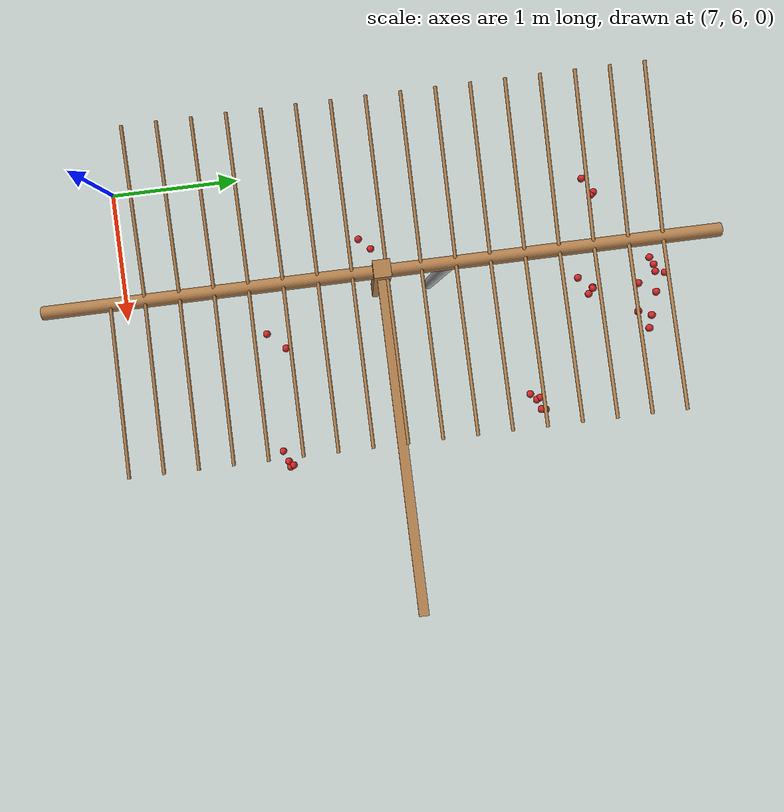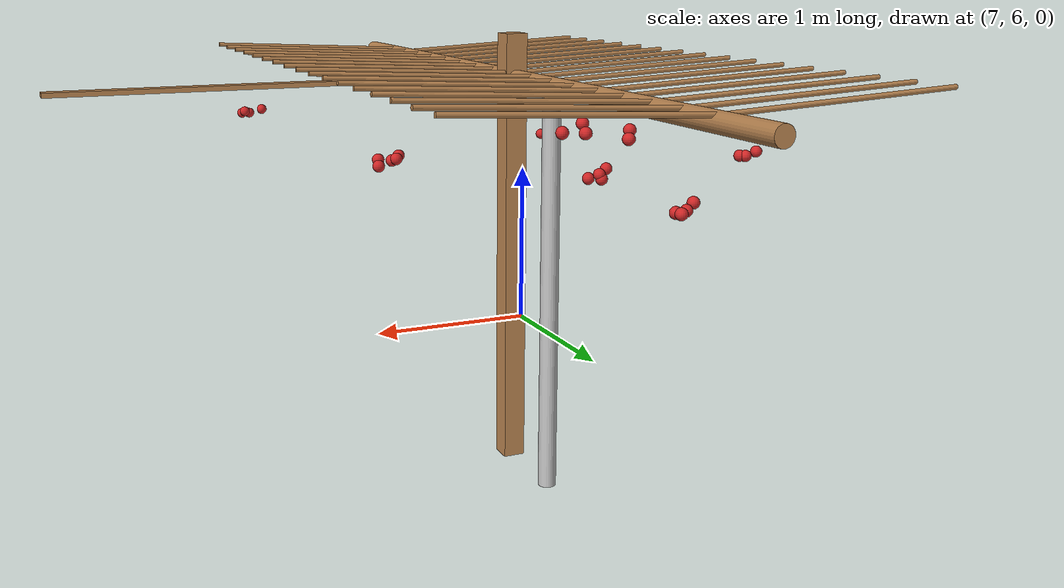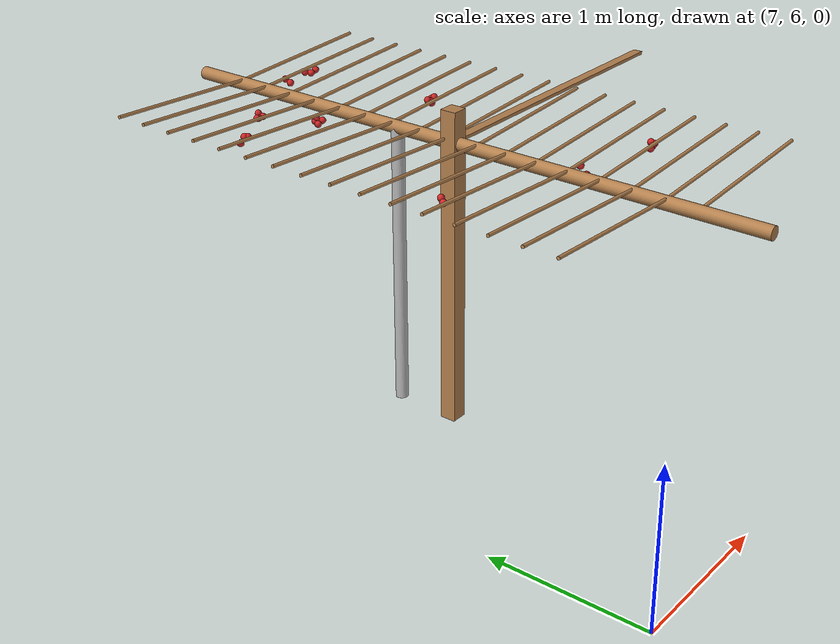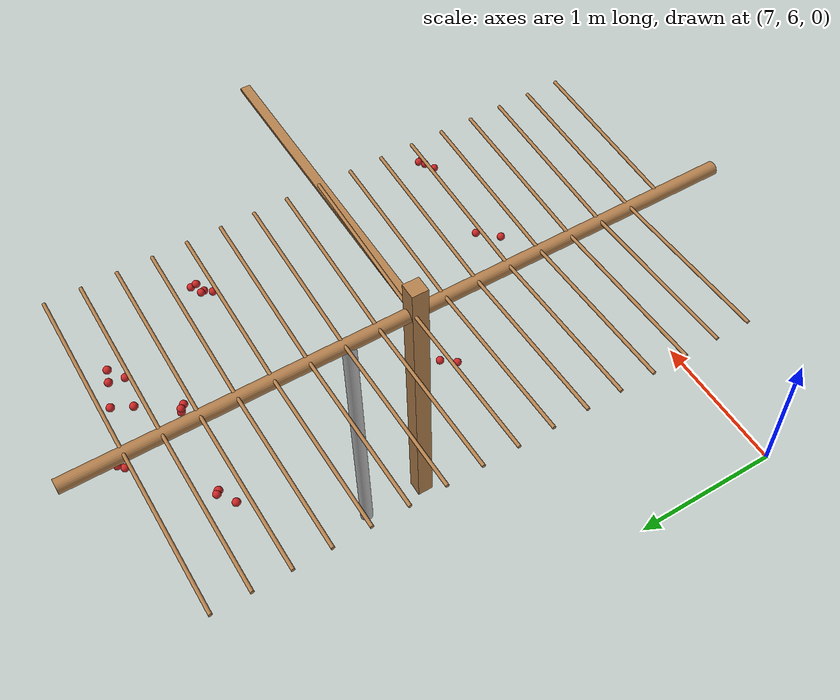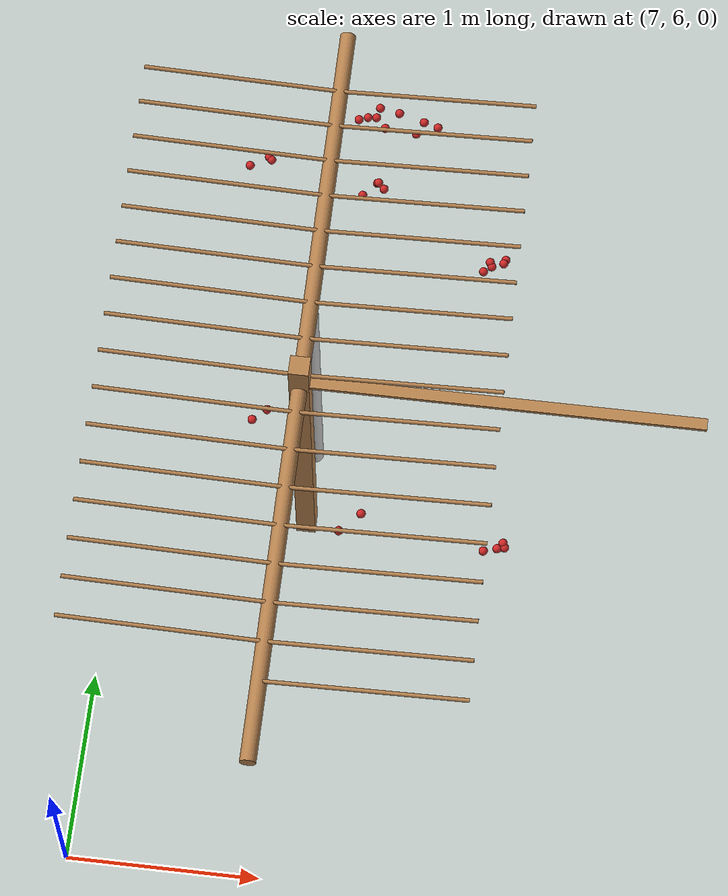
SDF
<sdf version="1.4">
 <model name="pergola">
  <include><name>post_48</name><pose>8.0 8.0 0 0 0 0</pose><uri>model://post</uri></include>
  <link name="beam_48">
   <pose>9.0 8.0 1.81 0 0 0</pose>
   <collision name="collision"><geometry><box><size>2.0 0.06 0.02</size></box></geometry></collision>
   <visual name="visual">
    <geometry><box><size>2.0 0.06 0.02</size></box></geometry>
    <material><script><name>Gazebo/Wood</name></script></material>
   </visual>
   <inertial>
    <mass>5</mass>
    <inertia>
     <ixx>0.0016666666666666668</ixx>
     <ixy>0.0</ixy>
     <ixz>0.0</ixz>
     <iyy>1.6681666666666664</iyy>
     <iyz>0.0</iyz>
     <izz>1.6668333333333332</izz>
    </inertia>
   </inertial>
  </link>
  <include><name>tree_44</name><pose>8.0 8.4 0 0 0 0</pose><uri>model://tree_trunk</uri></include>
  <link name="baseBranch_43">
   <pose>8.0 7.0 1.8 1.5707963267948966 0 0</pose>
   <collision name="collision">
    <geometry><cylinder><radius>0.04</radius><length>1.94</length></cylinder></geometry>
   </collision>
   <visual name="visual">
    <geometry><cylinder><radius>0.04</radius><length>1.94</length></cylinder></geometry>
    <material><script><name>Gazebo/WoodFloor</name></script></material>
   </visual>
   <inertial>
    <mass>10</mass>
    <inertia>
     <ixx>3.140333333333333</ixx>
     <ixy>0.0</ixy>
     <ixz>0.0</ixz>
     <iyy>3.140333333333333</iyy>
     <iyz>0.0</iyz>
     <izz>0.008</izz>
    </inertia>
   </inertial>
  </link>
  <link name="baseBranch_44">
   <pose>8.0 9.0 1.8 1.5707963267948966 0 0</pose>
   <collision name="collision">
    <geometry><cylinder><radius>0.04</radius><length>1.94</length></cylinder></geometry>
   </collision>
   <visual name="visual">
    <geometry><cylinder><radius>0.04</radius><length>1.94</length></cylinder></geometry>
    <material><script><name>Gazebo/WoodFloor</name></script></material>
   </visual>
   <inertial>
    <mass>10</mass>
    <inertia>
     <ixx>3.140333333333333</ixx>
     <ixy>0.0</ixy>
     <ixz>0.0</ixz>
     <iyy>3.140333333333333</iyy>
     <iyz>0.0</iyz>
     <izz>0.008</izz>
    </inertia>
   </inertial>
  </link>
  <link name="vine_667">
   <pose>7.5 6.630000000000001 1.85 0 -1.5208379310729538 0</pose>
   <collision name="collision">
    <geometry><cylinder><radius>0.01</radius><length>1.0012492197250393</length></cylinder></geometry>
   </collision>
   <visual name="visual">
    <geometry><cylinder><radius>0.01</radius><length>1.0012492197250393</length></cylinder></geometry>
    <material><script><name>Gazebo/WoodFloor</name></script></material>
   </visual>
   <inertial>
    <mass>5</mass>
    <inertia>
     <ixx>0.41783333333333345</ixx>
     <ixy>0.0</ixy>
     <ixz>0.0</ixz>
     <iyy>0.41783333333333345</iyy>
     <iyz>0.0</iyz>
     <izz>0.00025</izz>
    </inertia>
   </inertial>
  </link>
  <link name="vine_669">
   <pose>7.5 6.830000000000001 1.85 0 -1.5208379310729538 0</pose>
   <collision name="collision">
    <geometry><cylinder><radius>0.01</radius><length>1.0012492197250393</length></cylinder></geometry>
   </collision>
   <visual name="visual">
    <geometry><cylinder><radius>0.01</radius><length>1.0012492197250393</length></cylinder></geometry>
    <material><script><name>Gazebo/WoodFloor</name></script></material>
   </visual>
   <inertial>
    <mass>5</mass>
    <inertia>
     <ixx>0.41783333333333345</ixx>
     <ixy>0.0</ixy>
     <ixz>0.0</ixz>
     <iyy>0.41783333333333345</iyy>
     <iyz>0.0</iyz>
     <izz>0.00025</izz>
    </inertia>
   </inertial>
  </link>
  <link name="vine_671">
   <pose>7.5 7.03 1.85 0 -1.5208379310729538 0</pose>
   <collision name="collision">
    <geometry><cylinder><radius>0.01</radius><length>1.0012492197250393</length></cylinder></geometry>
   </collision>
   <visual name="visual">
    <geometry><cylinder><radius>0.01</radius><length>1.0012492197250393</length></cylinder></geometry>
    <material><script><name>Gazebo/WoodFloor</name></script></material>
   </visual>
   <inertial>
    <mass>5</mass>
    <inertia>
     <ixx>0.41783333333333345</ixx>
     <ixy>0.0</ixy>
     <ixz>0.0</ixz>
     <iyy>0.41783333333333345</iyy>
     <iyz>0.0</iyz>
     <izz>0.00025</izz>
    </inertia>
   </inertial>
  </link>
  <link name="vine_673">
   <pose>7.5 7.23 1.85 0 -1.5208379310729538 0</pose>
   <collision name="collision">
    <geometry><cylinder><radius>0.01</radius><length>1.0012492197250393</length></cylinder></geometry>
   </collision>
   <visual name="visual">
    <geometry><cylinder><radius>0.01</radius><length>1.0012492197250393</length></cylinder></geometry>
    <material><script><name>Gazebo/WoodFloor</name></script></material>
   </visual>
   <inertial>
    <mass>5</mass>
    <inertia>
     <ixx>0.41783333333333345</ixx>
     <ixy>0.0</ixy>
     <ixz>0.0</ixz>
     <iyy>0.41783333333333345</iyy>
     <iyz>0.0</iyz>
     <izz>0.00025</izz>
    </inertia>
   </inertial>
  </link>
  <link name="vine_675">
   <pose>7.5 7.430000000000001 1.85 0 -1.5208379310729538 0</pose>
   <collision name="collision">
    <geometry><cylinder><radius>0.01</radius><length>1.0012492197250393</length></cylinder></geometry>
   </collision>
   <visual name="visual">
    <geometry><cylinder><radius>0.01</radius><length>1.0012492197250393</length></cylinder></geometry>
    <material><script><name>Gazebo/WoodFloor</name></script></material>
   </visual>
   <inertial>
    <mass>5</mass>
    <inertia>
     <ixx>0.41783333333333345</ixx>
     <ixy>0.0</ixy>
     <ixz>0.0</ixz>
     <iyy>0.41783333333333345</iyy>
     <iyz>0.0</iyz>
     <izz>0.00025</izz>
    </inertia>
   </inertial>
  </link>
  <link name="vine_677">
   <pose>7.5 7.630000000000001 1.85 0 -1.5208379310729538 0</pose>
   <collision name="collision">
    <geometry><cylinder><radius>0.01</radius><length>1.0012492197250393</length></cylinder></geometry>
   </collision>
   <visual name="visual">
    <geometry><cylinder><radius>0.01</radius><length>1.0012492197250393</length></cylinder></geometry>
    <material><script><name>Gazebo/WoodFloor</name></script></material>
   </visual>
   <inertial>
    <mass>5</mass>
    <inertia>
     <ixx>0.41783333333333345</ixx>
     <ixy>0.0</ixy>
     <ixz>0.0</ixz>
     <iyy>0.41783333333333345</iyy>
     <iyz>0.0</iyz>
     <izz>0.00025</izz>
    </inertia>
   </inertial>
  </link>
  <link name="vine_679">
   <pose>7.5 7.830000000000001 1.85 0 -1.5208379310729538 0</pose>
   <collision name="collision">
    <geometry><cylinder><radius>0.01</radius><length>1.0012492197250393</length></cylinder></geometry>
   </collision>
   <visual name="visual">
    <geometry><cylinder><radius>0.01</radius><length>1.0012492197250393</length></cylinder></geometry>
    <material><script><name>Gazebo/WoodFloor</name></script></material>
   </visual>
   <inertial>
    <mass>5</mass>
    <inertia>
     <ixx>0.41783333333333345</ixx>
     <ixy>0.0</ixy>
     <ixz>0.0</ixz>
     <iyy>0.41783333333333345</iyy>
     <iyz>0.0</iyz>
     <izz>0.00025</izz>
    </inertia>
   </inertial>
  </link>
  <link name="vine_681">
   <pose>7.5 8.03 1.85 0 -1.5208379310729538 0</pose>
   <collision name="collision">
    <geometry><cylinder><radius>0.01</radius><length>1.0012492197250393</length></cylinder></geometry>
   </collision>
   <visual name="visual">
    <geometry><cylinder><radius>0.01</radius><length>1.0012492197250393</length></cylinder></geometry>
    <material><script><name>Gazebo/WoodFloor</name></script></material>
   </visual>
   <inertial>
    <mass>5</mass>
    <inertia>
     <ixx>0.41783333333333345</ixx>
     <ixy>0.0</ixy>
     <ixz>0.0</ixz>
     <iyy>0.41783333333333345</iyy>
     <iyz>0.0</iyz>
     <izz>0.00025</izz>
    </inertia>
   </inertial>
  </link>
  <link name="vine_683">
   <pose>7.5 8.23 1.85 0 -1.5208379310729538 0</pose>
   <collision name="collision">
    <geometry><cylinder><radius>0.01</radius><length>1.0012492197250393</length></cylinder></geometry>
   </collision>
   <visual name="visual">
    <geometry><cylinder><radius>0.01</radius><length>1.0012492197250393</length></cylinder></geometry>
    <material><script><name>Gazebo/WoodFloor</name></script></material>
   </visual>
   <inertial>
    <mass>5</mass>
    <inertia>
     <ixx>0.41783333333333345</ixx>
     <ixy>0.0</ixy>
     <ixz>0.0</ixz>
     <iyy>0.41783333333333345</iyy>
     <iyz>0.0</iyz>
     <izz>0.00025</izz>
    </inertia>
   </inertial>
  </link>
  <link name="vine_685">
   <pose>7.5 8.43 1.85 0 -1.5208379310729538 0</pose>
   <collision name="collision">
    <geometry><cylinder><radius>0.01</radius><length>1.0012492197250393</length></cylinder></geometry>
   </collision>
   <visual name="visual">
    <geometry><cylinder><radius>0.01</radius><length>1.0012492197250393</length></cylinder></geometry>
    <material><script><name>Gazebo/WoodFloor</name></script></material>
   </visual>
   <inertial>
    <mass>5</mass>
    <inertia>
     <ixx>0.41783333333333345</ixx>
     <ixy>0.0</ixy>
     <ixz>0.0</ixz>
     <iyy>0.41783333333333345</iyy>
     <iyz>0.0</iyz>
     <izz>0.00025</izz>
    </inertia>
   </inertial>
  </link>
  <link name="vine_687">
   <pose>7.5 8.629999999999999 1.85 0 -1.5208379310729538 0</pose>
   <collision name="collision">
    <geometry><cylinder><radius>0.01</radius><length>1.0012492197250393</length></cylinder></geometry>
   </collision>
   <visual name="visual">
    <geometry><cylinder><radius>0.01</radius><length>1.0012492197250393</length></cylinder></geometry>
    <material><script><name>Gazebo/WoodFloor</name></script></material>
   </visual>
   <inertial>
    <mass>5</mass>
    <inertia>
     <ixx>0.41783333333333345</ixx>
     <ixy>0.0</ixy>
     <ixz>0.0</ixz>
     <iyy>0.41783333333333345</iyy>
     <iyz>0.0</iyz>
     <izz>0.00025</izz>
    </inertia>
   </inertial>
  </link>
  <link name="vine_689">
   <pose>7.5 8.83 1.85 0 -1.5208379310729538 0</pose>
   <collision name="collision">
    <geometry><cylinder><radius>0.01</radius><length>1.0012492197250393</length></cylinder></geometry>
   </collision>
   <visual name="visual">
    <geometry><cylinder><radius>0.01</radius><length>1.0012492197250393</length></cylinder></geometry>
    <material><script><name>Gazebo/WoodFloor</name></script></material>
   </visual>
   <inertial>
    <mass>5</mass>
    <inertia>
     <ixx>0.41783333333333345</ixx>
     <ixy>0.0</ixy>
     <ixz>0.0</ixz>
     <iyy>0.41783333333333345</iyy>
     <iyz>0.0</iyz>
     <izz>0.00025</izz>
    </inertia>
   </inertial>
  </link>
  <link name="vine_691">
   <pose>7.5 9.03 1.85 0 -1.5208379310729538 0</pose>
   <collision name="collision">
    <geometry><cylinder><radius>0.01</radius><length>1.0012492197250393</length></cylinder></geometry>
   </collision>
   <visual name="visual">
    <geometry><cylinder><radius>0.01</radius><length>1.0012492197250393</length></cylinder></geometry>
    <material><script><name>Gazebo/WoodFloor</name></script></material>
   </visual>
   <inertial>
    <mass>5</mass>
    <inertia>
     <ixx>0.41783333333333345</ixx>
     <ixy>0.0</ixy>
     <ixz>0.0</ixz>
     <iyy>0.41783333333333345</iyy>
     <iyz>0.0</iyz>
     <izz>0.00025</izz>
    </inertia>
   </inertial>
  </link>
  <link name="vine_693">
   <pose>7.5 9.23 1.85 0 -1.5208379310729538 0</pose>
   <collision name="collision">
    <geometry><cylinder><radius>0.01</radius><length>1.0012492197250393</length></cylinder></geometry>
   </collision>
   <visual name="visual">
    <geometry><cylinder><radius>0.01</radius><length>1.0012492197250393</length></cylinder></geometry>
    <material><script><name>Gazebo/WoodFloor</name></script></material>
   </visual>
   <inertial>
    <mass>5</mass>
    <inertia>
     <ixx>0.41783333333333345</ixx>
     <ixy>0.0</ixy>
     <ixz>0.0</ixz>
     <iyy>0.41783333333333345</iyy>
     <iyz>0.0</iyz>
     <izz>0.00025</izz>
    </inertia>
   </inertial>
  </link>
  <link name="vine_695">
   <pose>7.5 9.43 1.85 0 -1.5208379310729538 0</pose>
   <collision name="collision">
    <geometry><cylinder><radius>0.01</radius><length>1.0012492197250393</length></cylinder></geometry>
   </collision>
   <visual name="visual">
    <geometry><cylinder><radius>0.01</radius><length>1.0012492197250393</length></cylinder></geometry>
    <material><script><name>Gazebo/WoodFloor</name></script></material>
   </visual>
   <inertial>
    <mass>5</mass>
    <inertia>
     <ixx>0.41783333333333345</ixx>
     <ixy>0.0</ixy>
     <ixz>0.0</ixz>
     <iyy>0.41783333333333345</iyy>
     <iyz>0.0</iyz>
     <izz>0.00025</izz>
    </inertia>
   </inertial>
  </link>
  <link name="vine_697">
   <pose>7.5 9.63 1.85 0 -1.5208379310729538 0</pose>
   <collision name="collision">
    <geometry><cylinder><radius>0.01</radius><length>1.0012492197250393</length></cylinder></geometry>
   </collision>
   <visual name="visual">
    <geometry><cylinder><radius>0.01</radius><length>1.0012492197250393</length></cylinder></geometry>
    <material><script><name>Gazebo/WoodFloor</name></script></material>
   </visual>
   <inertial>
    <mass>5</mass>
    <inertia>
     <ixx>0.41783333333333345</ixx>
     <ixy>0.0</ixy>
     <ixz>0.0</ixz>
     <iyy>0.41783333333333345</iyy>
     <iyz>0.0</iyz>
     <izz>0.00025</izz>
    </inertia>
   </inertial>
  </link>
  <link name="vine_864">
   <pose>8.5 6.430000000000001 1.85 0 1.5208379310729538 0</pose>
   <collision name="collision">
    <geometry><cylinder><radius>0.01</radius><length>1.0012492197250393</length></cylinder></geometry>
   </collision>
   <visual name="visual">
    <geometry><cylinder><radius>0.01</radius><length>1.0012492197250393</length></cylinder></geometry>
    <material><script><name>Gazebo/WoodFloor</name></script></material>
   </visual>
   <inertial>
    <mass>5</mass>
    <inertia>
     <ixx>0.41783333333333345</ixx>
     <ixy>0.0</ixy>
     <ixz>0.0</ixz>
     <iyy>0.41783333333333345</iyy>
     <iyz>0.0</iyz>
     <izz>0.00025</izz>
    </inertia>
   </inertial>
  </link>
  <link name="vine_866">
   <pose>8.5 6.630000000000001 1.85 0 1.5208379310729538 0</pose>
   <collision name="collision">
    <geometry><cylinder><radius>0.01</radius><length>1.0012492197250393</length></cylinder></geometry>
   </collision>
   <visual name="visual">
    <geometry><cylinder><radius>0.01</radius><length>1.0012492197250393</length></cylinder></geometry>
    <material><script><name>Gazebo/WoodFloor</name></script></material>
   </visual>
   <inertial>
    <mass>5</mass>
    <inertia>
     <ixx>0.41783333333333345</ixx>
     <ixy>0.0</ixy>
     <ixz>0.0</ixz>
     <iyy>0.41783333333333345</iyy>
     <iyz>0.0</iyz>
     <izz>0.00025</izz>
    </inertia>
   </inertial>
  </link>
  <link name="vine_868">
   <pose>8.5 6.830000000000001 1.85 0 1.5208379310729538 0</pose>
   <collision name="collision">
    <geometry><cylinder><radius>0.01</radius><length>1.0012492197250393</length></cylinder></geometry>
   </collision>
   <visual name="visual">
    <geometry><cylinder><radius>0.01</radius><length>1.0012492197250393</length></cylinder></geometry>
    <material><script><name>Gazebo/WoodFloor</name></script></material>
   </visual>
   <inertial>
    <mass>5</mass>
    <inertia>
     <ixx>0.41783333333333345</ixx>
     <ixy>0.0</ixy>
     <ixz>0.0</ixz>
     <iyy>0.41783333333333345</iyy>
     <iyz>0.0</iyz>
     <izz>0.00025</izz>
    </inertia>
   </inertial>
  </link>
  <link name="vine_870">
   <pose>8.5 7.03 1.85 0 1.5208379310729538 0</pose>
   <collision name="collision">
    <geometry><cylinder><radius>0.01</radius><length>1.0012492197250393</length></cylinder></geometry>
   </collision>
   <visual name="visual">
    <geometry><cylinder><radius>0.01</radius><length>1.0012492197250393</length></cylinder></geometry>
    <material><script><name>Gazebo/WoodFloor</name></script></material>
   </visual>
   <inertial>
    <mass>5</mass>
    <inertia>
     <ixx>0.41783333333333345</ixx>
     <ixy>0.0</ixy>
     <ixz>0.0</ixz>
     <iyy>0.41783333333333345</iyy>
     <iyz>0.0</iyz>
     <izz>0.00025</izz>
    </inertia>
   </inertial>
  </link>
  <link name="vine_872">
   <pose>8.5 7.23 1.85 0 1.5208379310729538 0</pose>
   <collision name="collision">
    <geometry><cylinder><radius>0.01</radius><length>1.0012492197250393</length></cylinder></geometry>
   </collision>
   <visual name="visual">
    <geometry><cylinder><radius>0.01</radius><length>1.0012492197250393</length></cylinder></geometry>
    <material><script><name>Gazebo/WoodFloor</name></script></material>
   </visual>
   <inertial>
    <mass>5</mass>
    <inertia>
     <ixx>0.41783333333333345</ixx>
     <ixy>0.0</ixy>
     <ixz>0.0</ixz>
     <iyy>0.41783333333333345</iyy>
     <iyz>0.0</iyz>
     <izz>0.00025</izz>
    </inertia>
   </inertial>
  </link>
  <link name="vine_874">
   <pose>8.5 7.430000000000001 1.85 0 1.5208379310729538 0</pose>
   <collision name="collision">
    <geometry><cylinder><radius>0.01</radius><length>1.0012492197250393</length></cylinder></geometry>
   </collision>
   <visual name="visual">
    <geometry><cylinder><radius>0.01</radius><length>1.0012492197250393</length></cylinder></geometry>
    <material><script><name>Gazebo/WoodFloor</name></script></material>
   </visual>
   <inertial>
    <mass>5</mass>
    <inertia>
     <ixx>0.41783333333333345</ixx>
     <ixy>0.0</ixy>
     <ixz>0.0</ixz>
     <iyy>0.41783333333333345</iyy>
     <iyz>0.0</iyz>
     <izz>0.00025</izz>
    </inertia>
   </inertial>
  </link>
  <link name="vine_876">
   <pose>8.5 7.630000000000001 1.85 0 1.5208379310729538 0</pose>
   <collision name="collision">
    <geometry><cylinder><radius>0.01</radius><length>1.0012492197250393</length></cylinder></geometry>
   </collision>
   <visual name="visual">
    <geometry><cylinder><radius>0.01</radius><length>1.0012492197250393</length></cylinder></geometry>
    <material><script><name>Gazebo/WoodFloor</name></script></material>
   </visual>
   <inertial>
    <mass>5</mass>
    <inertia>
     <ixx>0.41783333333333345</ixx>
     <ixy>0.0</ixy>
     <ixz>0.0</ixz>
     <iyy>0.41783333333333345</iyy>
     <iyz>0.0</iyz>
     <izz>0.00025</izz>
    </inertia>
   </inertial>
  </link>
  <link name="vine_878">
   <pose>8.5 7.830000000000001 1.85 0 1.5208379310729538 0</pose>
   <collision name="collision">
    <geometry><cylinder><radius>0.01</radius><length>1.0012492197250393</length></cylinder></geometry>
   </collision>
   <visual name="visual">
    <geometry><cylinder><radius>0.01</radius><length>1.0012492197250393</length></cylinder></geometry>
    <material><script><name>Gazebo/WoodFloor</name></script></material>
   </visual>
   <inertial>
    <mass>5</mass>
    <inertia>
     <ixx>0.41783333333333345</ixx>
     <ixy>0.0</ixy>
     <ixz>0.0</ixz>
     <iyy>0.41783333333333345</iyy>
     <iyz>0.0</iyz>
     <izz>0.00025</izz>
    </inertia>
   </inertial>
  </link>
  <link name="vine_880">
   <pose>8.5 8.03 1.85 0 1.5208379310729538 0</pose>
   <collision name="collision">
    <geometry><cylinder><radius>0.01</radius><length>1.0012492197250393</length></cylinder></geometry>
   </collision>
   <visual name="visual">
    <geometry><cylinder><radius>0.01</radius><length>1.0012492197250393</length></cylinder></geometry>
    <material><script><name>Gazebo/WoodFloor</name></script></material>
   </visual>
   <inertial>
    <mass>5</mass>
    <inertia>
     <ixx>0.41783333333333345</ixx>
     <ixy>0.0</ixy>
     <ixz>0.0</ixz>
     <iyy>0.41783333333333345</iyy>
     <iyz>0.0</iyz>
     <izz>0.00025</izz>
    </inertia>
   </inertial>
  </link>
  <link name="vine_882">
   <pose>8.5 8.23 1.85 0 1.5208379310729538 0</pose>
   <collision name="collision">
    <geometry><cylinder><radius>0.01</radius><length>1.0012492197250393</length></cylinder></geometry>
   </collision>
   <visual name="visual">
    <geometry><cylinder><radius>0.01</radius><length>1.0012492197250393</length></cylinder></geometry>
    <material><script><name>Gazebo/WoodFloor</name></script></material>
   </visual>
   <inertial>
    <mass>5</mass>
    <inertia>
     <ixx>0.41783333333333345</ixx>
     <ixy>0.0</ixy>
     <ixz>0.0</ixz>
     <iyy>0.41783333333333345</iyy>
     <iyz>0.0</iyz>
     <izz>0.00025</izz>
    </inertia>
   </inertial>
  </link>
  <link name="vine_884">
   <pose>8.5 8.43 1.85 0 1.5208379310729538 0</pose>
   <collision name="collision">
    <geometry><cylinder><radius>0.01</radius><length>1.0012492197250393</length></cylinder></geometry>
   </collision>
   <visual name="visual">
    <geometry><cylinder><radius>0.01</radius><length>1.0012492197250393</length></cylinder></geometry>
    <material><script><name>Gazebo/WoodFloor</name></script></material>
   </visual>
   <inertial>
    <mass>5</mass>
    <inertia>
     <ixx>0.41783333333333345</ixx>
     <ixy>0.0</ixy>
     <ixz>0.0</ixz>
     <iyy>0.41783333333333345</iyy>
     <iyz>0.0</iyz>
     <izz>0.00025</izz>
    </inertia>
   </inertial>
  </link>
  <link name="vine_886">
   <pose>8.5 8.629999999999999 1.85 0 1.5208379310729538 0</pose>
   <collision name="collision">
    <geometry><cylinder><radius>0.01</radius><length>1.0012492197250393</length></cylinder></geometry>
   </collision>
   <visual name="visual">
    <geometry><cylinder><radius>0.01</radius><length>1.0012492197250393</length></cylinder></geometry>
    <material><script><name>Gazebo/WoodFloor</name></script></material>
   </visual>
   <inertial>
    <mass>5</mass>
    <inertia>
     <ixx>0.41783333333333345</ixx>
     <ixy>0.0</ixy>
     <ixz>0.0</ixz>
     <iyy>0.41783333333333345</iyy>
     <iyz>0.0</iyz>
     <izz>0.00025</izz>
    </inertia>
   </inertial>
  </link>
  <link name="vine_888">
   <pose>8.5 8.83 1.85 0 1.5208379310729538 0</pose>
   <collision name="collision">
    <geometry><cylinder><radius>0.01</radius><length>1.0012492197250393</length></cylinder></geometry>
   </collision>
   <visual name="visual">
    <geometry><cylinder><radius>0.01</radius><length>1.0012492197250393</length></cylinder></geometry>
    <material><script><name>Gazebo/WoodFloor</name></script></material>
   </visual>
   <inertial>
    <mass>5</mass>
    <inertia>
     <ixx>0.41783333333333345</ixx>
     <ixy>0.0</ixy>
     <ixz>0.0</ixz>
     <iyy>0.41783333333333345</iyy>
     <iyz>0.0</iyz>
     <izz>0.00025</izz>
    </inertia>
   </inertial>
  </link>
  <link name="vine_890">
   <pose>8.5 9.03 1.85 0 1.5208379310729538 0</pose>
   <collision name="collision">
    <geometry><cylinder><radius>0.01</radius><length>1.0012492197250393</length></cylinder></geometry>
   </collision>
   <visual name="visual">
    <geometry><cylinder><radius>0.01</radius><length>1.0012492197250393</length></cylinder></geometry>
    <material><script><name>Gazebo/WoodFloor</name></script></material>
   </visual>
   <inertial>
    <mass>5</mass>
    <inertia>
     <ixx>0.41783333333333345</ixx>
     <ixy>0.0</ixy>
     <ixz>0.0</ixz>
     <iyy>0.41783333333333345</iyy>
     <iyz>0.0</iyz>
     <izz>0.00025</izz>
    </inertia>
   </inertial>
  </link>
  <link name="vine_892">
   <pose>8.5 9.23 1.85 0 1.5208379310729538 0</pose>
   <collision name="collision">
    <geometry><cylinder><radius>0.01</radius><length>1.0012492197250393</length></cylinder></geometry>
   </collision>
   <visual name="visual">
    <geometry><cylinder><radius>0.01</radius><length>1.0012492197250393</length></cylinder></geometry>
    <material><script><name>Gazebo/WoodFloor</name></script></material>
   </visual>
   <inertial>
    <mass>5</mass>
    <inertia>
     <ixx>0.41783333333333345</ixx>
     <ixy>0.0</ixy>
     <ixz>0.0</ixz>
     <iyy>0.41783333333333345</iyy>
     <iyz>0.0</iyz>
     <izz>0.00025</izz>
    </inertia>
   </inertial>
  </link>
  <link name="vine_894">
   <pose>8.5 9.43 1.85 0 1.5208379310729538 0</pose>
   <collision name="collision">
    <geometry><cylinder><radius>0.01</radius><length>1.0012492197250393</length></cylinder></geometry>
   </collision>
   <visual name="visual">
    <geometry><cylinder><radius>0.01</radius><length>1.0012492197250393</length></cylinder></geometry>
    <material><script><name>Gazebo/WoodFloor</name></script></material>
   </visual>
   <inertial>
    <mass>5</mass>
    <inertia>
     <ixx>0.41783333333333345</ixx>
     <ixy>0.0</ixy>
     <ixz>0.0</ixz>
     <iyy>0.41783333333333345</iyy>
     <iyz>0.0</iyz>
     <izz>0.00025</izz>
    </inertia>
   </inertial>
  </link>
  <link name="vine_896">
   <pose>8.5 9.63 1.85 0 1.5208379310729538 0</pose>
   <collision name="collision">
    <geometry><cylinder><radius>0.01</radius><length>1.0012492197250393</length></cylinder></geometry>
   </collision>
   <visual name="visual">
    <geometry><cylinder><radius>0.01</radius><length>1.0012492197250393</length></cylinder></geometry>
    <material><script><name>Gazebo/WoodFloor</name></script></material>
   </visual>
   <inertial>
    <mass>5</mass>
    <inertia>
     <ixx>0.41783333333333345</ixx>
     <ixy>0.0</ixy>
     <ixz>0.0</ixz>
     <iyy>0.41783333333333345</iyy>
     <iyz>0.0</iyz>
     <izz>0.00025</izz>
    </inertia>
   </inertial>
  </link>
  <link name="fruit_18">
   <pose>7.581290114669968 9.261838918660123 1.6235108385465933 0 0 0</pose>
   <collision name="fruit_collision_18"><geometry><sphere><radius>0.022</radius></sphere></geometry></collision>
   <visual name="visual">
    <geometry><sphere><radius>0.022</radius></sphere></geometry>
    <material><script><name>Gazebo/Red</name></script></material>
   </visual>
   <inertial>
    <mass>0.05</mass>
    <inertia>
     <ixx>9.679999999999999e-06</ixx>
     <ixy>0.0</ixy>
     <ixz>0.0</ixz>
     <iyy>9.679999999999999e-06</iyy>
     <iyz>0.0</iyz>
     <izz>9.679999999999999e-06</izz>
    </inertia>
   </inertial>
   <sensor name="fruit_contact_18" type="contact">
    <contact><collision>fruit_collision_18</collision></contact>
   </sensor>
  </link>
  <link name="fruit_51">
   <pose>8.411350803293113 9.445516465501681 1.7958654879097147 0 0 0</pose>
   <collision name="fruit_collision_51"><geometry><sphere><radius>0.022</radius></sphere></geometry></collision>
   <visual name="visual">
    <geometry><sphere><radius>0.022</radius></sphere></geometry>
    <material><script><name>Gazebo/Red</name></script></material>
   </visual>
   <inertial>
    <mass>0.05</mass>
    <inertia>
     <ixx>9.679999999999999e-06</ixx>
     <ixy>0.0</ixy>
     <ixz>0.0</ixz>
     <iyy>9.679999999999999e-06</iyy>
     <iyz>0.0</iyz>
     <izz>9.679999999999999e-06</izz>
    </inertia>
   </inertial>
   <sensor name="fruit_contact_51" type="contact">
    <contact><collision>fruit_collision_51</collision></contact>
   </sensor>
  </link>
  <link name="fruit_101">
   <pose>8.168151486910277 9.177957673450075 1.5856301804149062 0 0 0</pose>
   <collision name="fruit_collision_101"><geometry><sphere><radius>0.022</radius></sphere></geometry></collision>
   <visual name="visual">
    <geometry><sphere><radius>0.022</radius></sphere></geometry>
    <material><script><name>Gazebo/Red</name></script></material>
   </visual>
   <inertial>
    <mass>0.05</mass>
    <inertia>
     <ixx>9.679999999999999e-06</ixx>
     <ixy>0.0</ixy>
     <ixz>0.0</ixz>
     <iyy>9.679999999999999e-06</iyy>
     <iyz>0.0</iyz>
     <izz>9.679999999999999e-06</izz>
    </inertia>
   </inertial>
   <sensor name="fruit_contact_101" type="contact">
    <contact><collision>fruit_collision_101</collision></contact>
   </sensor>
  </link>
  <link name="fruit_139">
   <pose>8.249212944509045 9.475040536429223 1.7685448182663113 0 0 0</pose>
   <collision name="fruit_collision_139"><geometry><sphere><radius>0.022</radius></sphere></geometry></collision>
   <visual name="visual">
    <geometry><sphere><radius>0.022</radius></sphere></geometry>
    <material><script><name>Gazebo/Red</name></script></material>
   </visual>
   <inertial>
    <mass>0.05</mass>
    <inertia>
     <ixx>9.679999999999999e-06</ixx>
     <ixy>0.0</ixy>
     <ixz>0.0</ixz>
     <iyy>9.679999999999999e-06</iyy>
     <iyz>0.0</iyz>
     <izz>9.679999999999999e-06</izz>
    </inertia>
   </inertial>
   <sensor name="fruit_contact_139" type="contact">
    <contact><collision>fruit_collision_139</collision></contact>
   </sensor>
  </link>
  <link name="fruit_152">
   <pose>8.981415558805331 7.29008322246547 1.626142924840516 0 0 0</pose>
   <collision name="fruit_collision_152"><geometry><sphere><radius>0.022</radius></sphere></geometry></collision>
   <visual name="visual">
    <geometry><sphere><radius>0.022</radius></sphere></geometry>
    <material><script><name>Gazebo/Red</name></script></material>
   </visual>
   <inertial>
    <mass>0.05</mass>
    <inertia>
     <ixx>9.679999999999999e-06</ixx>
     <ixy>0.0</ixy>
     <ixz>0.0</ixz>
     <iyy>9.679999999999999e-06</iyy>
     <iyz>0.0</iyz>
     <izz>9.679999999999999e-06</izz>
    </inertia>
   </inertial>
   <sensor name="fruit_contact_152" type="contact">
    <contact><collision>fruit_collision_152</collision></contact>
   </sensor>
  </link>
  <link name="fruit_216">
   <pose>8.095099080308772 9.635833956941221 1.5404094862231055 0 0 0</pose>
   <collision name="fruit_collision_216"><geometry><sphere><radius>0.022</radius></sphere></geometry></collision>
   <visual name="visual">
    <geometry><sphere><radius>0.022</radius></sphere></geometry>
    <material><script><name>Gazebo/Red</name></script></material>
   </visual>
   <inertial>
    <mass>0.05</mass>
    <inertia>
     <ixx>9.679999999999999e-06</ixx>
     <ixy>0.0</ixy>
     <ixz>0.0</ixz>
     <iyy>9.679999999999999e-06</iyy>
     <iyz>0.0</iyz>
     <izz>9.679999999999999e-06</izz>
    </inertia>
   </inertial>
   <sensor name="fruit_contact_216" type="contact">
    <contact><collision>fruit_collision_216</collision></contact>
   </sensor>
  </link>
  <link name="fruit_222">
   <pose>8.27556095794802 7.286599622357239 1.694509582716246 0 0 0</pose>
   <collision name="fruit_collision_222"><geometry><sphere><radius>0.022</radius></sphere></geometry></collision>
   <visual name="visual">
    <geometry><sphere><radius>0.022</radius></sphere></geometry>
    <material><script><name>Gazebo/Red</name></script></material>
   </visual>
   <inertial>
    <mass>0.05</mass>
    <inertia>
     <ixx>9.679999999999999e-06</ixx>
     <ixy>0.0</ixy>
     <ixz>0.0</ixz>
     <iyy>9.679999999999999e-06</iyy>
     <iyz>0.0</iyz>
     <izz>9.679999999999999e-06</izz>
    </inertia>
   </inertial>
   <sensor name="fruit_contact_222" type="contact">
    <contact><collision>fruit_collision_222</collision></contact>
   </sensor>
  </link>
  <link name="fruit_249">
   <pose>7.768204666161004 7.89018902395995 1.5426762324422463 0 0 0</pose>
   <collision name="fruit_collision_249"><geometry><sphere><radius>0.022</radius></sphere></geometry></collision>
   <visual name="visual">
    <geometry><sphere><radius>0.022</radius></sphere></geometry>
    <material><script><name>Gazebo/Red</name></script></material>
   </visual>
   <inertial>
    <mass>0.05</mass>
    <inertia>
     <ixx>9.679999999999999e-06</ixx>
     <ixy>0.0</ixy>
     <ixz>0.0</ixz>
     <iyy>9.679999999999999e-06</iyy>
     <iyz>0.0</iyz>
     <izz>9.679999999999999e-06</izz>
    </inertia>
   </inertial>
   <sensor name="fruit_contact_249" type="contact">
    <contact><collision>fruit_collision_249</collision></contact>
   </sensor>
  </link>
  <link name="fruit_334">
   <pose>8.82520710713632 8.79960544145075 1.61878344926521 0 0 0</pose>
   <collision name="fruit_collision_334"><geometry><sphere><radius>0.022</radius></sphere></geometry></collision>
   <visual name="visual">
    <geometry><sphere><radius>0.022</radius></sphere></geometry>
    <material><script><name>Gazebo/Red</name></script></material>
   </visual>
   <inertial>
    <mass>0.05</mass>
    <inertia>
     <ixx>9.679999999999999e-06</ixx>
     <ixy>0.0</ixy>
     <ixz>0.0</ixz>
     <iyy>9.679999999999999e-06</iyy>
     <iyz>0.0</iyz>
     <izz>9.679999999999999e-06</izz>
    </inertia>
   </inertial>
   <sensor name="fruit_contact_334" type="contact">
    <contact><collision>fruit_collision_334</collision></contact>
   </sensor>
  </link>
  <link name="fruit_400">
   <pose>9.081810019614768 7.322196341259673 1.6170603383517028 0 0 0</pose>
   <collision name="fruit_collision_400"><geometry><sphere><radius>0.022</radius></sphere></geometry></collision>
   <visual name="visual">
    <geometry><sphere><radius>0.022</radius></sphere></geometry>
    <material><script><name>Gazebo/Red</name></script></material>
   </visual>
   <inertial>
    <mass>0.05</mass>
    <inertia>
     <ixx>9.679999999999999e-06</ixx>
     <ixy>0.0</ixy>
     <ixz>0.0</ixz>
     <iyy>9.679999999999999e-06</iyy>
     <iyz>0.0</iyz>
     <izz>9.679999999999999e-06</izz>
    </inertia>
   </inertial>
   <sensor name="fruit_contact_400" type="contact">
    <contact><collision>fruit_collision_400</collision></contact>
   </sensor>
  </link>
  <link name="fruit_444">
   <pose>8.853392915381788 8.856462963893858 1.6172563584845423 0 0 0</pose>
   <collision name="fruit_collision_444"><geometry><sphere><radius>0.022</radius></sphere></geometry></collision>
   <visual name="visual">
    <geometry><sphere><radius>0.022</radius></sphere></geometry>
    <material><script><name>Gazebo/Red</name></script></material>
   </visual>
   <inertial>
    <mass>0.05</mass>
    <inertia>
     <ixx>9.679999999999999e-06</ixx>
     <ixy>0.0</ixy>
     <ixz>0.0</ixz>
     <iyy>9.679999999999999e-06</iyy>
     <iyz>0.0</iyz>
     <izz>9.679999999999999e-06</izz>
    </inertia>
   </inertial>
   <sensor name="fruit_contact_444" type="contact">
    <contact><collision>fruit_collision_444</collision></contact>
   </sensor>
  </link>
  <link name="fruit_472">
   <pose>9.04666076448453 7.314269613024361 1.615250547658898 0 0 0</pose>
   <collision name="fruit_collision_472"><geometry><sphere><radius>0.022</radius></sphere></geometry></collision>
   <visual name="visual">
    <geometry><sphere><radius>0.022</radius></sphere></geometry>
    <material><script><name>Gazebo/Red</name></script></material>
   </visual>
   <inertial>
    <mass>0.05</mass>
    <inertia>
     <ixx>9.679999999999999e-06</ixx>
     <ixy>0.0</ixy>
     <ixz>0.0</ixz>
     <iyy>9.679999999999999e-06</iyy>
     <iyz>0.0</iyz>
     <izz>9.679999999999999e-06</izz>
    </inertia>
   </inertial>
   <sensor name="fruit_contact_472" type="contact">
    <contact><collision>fruit_collision_472</collision></contact>
   </sensor>
  </link>
  <link name="fruit_521">
   <pose>8.139031072567716 9.663468150566846 1.5224512300800026 0 0 0</pose>
   <collision name="fruit_collision_521"><geometry><sphere><radius>0.022</radius></sphere></geometry></collision>
   <visual name="visual">
    <geometry><sphere><radius>0.022</radius></sphere></geometry>
    <material><script><name>Gazebo/Red</name></script></material>
   </visual>
   <inertial>
    <mass>0.05</mass>
    <inertia>
     <ixx>9.679999999999999e-06</ixx>
     <ixy>0.0</ixy>
     <ixz>0.0</ixz>
     <iyy>9.679999999999999e-06</iyy>
     <iyz>0.0</iyz>
     <izz>9.679999999999999e-06</izz>
    </inertia>
   </inertial>
   <sensor name="fruit_contact_521" type="contact">
    <contact><collision>fruit_collision_521</collision></contact>
   </sensor>
  </link>
  <link name="fruit_535">
   <pose>8.241083176331772 9.259887341075 1.583087377754188 0 0 0</pose>
   <collision name="fruit_collision_535"><geometry><sphere><radius>0.022</radius></sphere></geometry></collision>
   <visual name="visual">
    <geometry><sphere><radius>0.022</radius></sphere></geometry>
    <material><script><name>Gazebo/Red</name></script></material>
   </visual>
   <inertial>
    <mass>0.05</mass>
    <inertia>
     <ixx>9.679999999999999e-06</ixx>
     <ixy>0.0</ixy>
     <ixz>0.0</ixz>
     <iyy>9.679999999999999e-06</iyy>
     <iyz>0.0</iyz>
     <izz>9.679999999999999e-06</izz>
    </inertia>
   </inertial>
   <sensor name="fruit_contact_535" type="contact">
    <contact><collision>fruit_collision_535</collision></contact>
   </sensor>
  </link>
  <link name="fruit_539">
   <pose>8.311284689673734 9.576242397615676 1.7556199941990605 0 0 0</pose>
   <collision name="fruit_collision_539"><geometry><sphere><radius>0.022</radius></sphere></geometry></collision>
   <visual name="visual">
    <geometry><sphere><radius>0.022</radius></sphere></geometry>
    <material><script><name>Gazebo/Red</name></script></material>
   </visual>
   <inertial>
    <mass>0.05</mass>
    <inertia>
     <ixx>9.679999999999999e-06</ixx>
     <ixy>0.0</ixy>
     <ixz>0.0</ixz>
     <iyy>9.679999999999999e-06</iyy>
     <iyz>0.0</iyz>
     <izz>9.679999999999999e-06</izz>
    </inertia>
   </inertial>
   <sensor name="fruit_contact_539" type="contact">
    <contact><collision>fruit_collision_539</collision></contact>
   </sensor>
  </link>
  <link name="fruit_558">
   <pose>8.4424948129991 9.527499917128981 1.7753354968145496 0 0 0</pose>
   <collision name="fruit_collision_558"><geometry><sphere><radius>0.022</radius></sphere></geometry></collision>
   <visual name="visual">
    <geometry><sphere><radius>0.022</radius></sphere></geometry>
    <material><script><name>Gazebo/Red</name></script></material>
   </visual>
   <inertial>
    <mass>0.05</mass>
    <inertia>
     <ixx>9.679999999999999e-06</ixx>
     <ixy>0.0</ixy>
     <ixz>0.0</ixz>
     <iyy>9.679999999999999e-06</iyy>
     <iyz>0.0</iyz>
     <izz>9.679999999999999e-06</izz>
    </inertia>
   </inertial>
   <sensor name="fruit_contact_558" type="contact">
    <contact><collision>fruit_collision_558</collision></contact>
   </sensor>
  </link>
  <link name="fruit_564">
   <pose>9.07251443189025 7.341291324839177 1.6257100611892612 0 0 0</pose>
   <collision name="fruit_collision_564"><geometry><sphere><radius>0.022</radius></sphere></geometry></collision>
   <visual name="visual">
    <geometry><sphere><radius>0.022</radius></sphere></geometry>
    <material><script><name>Gazebo/Red</name></script></material>
   </visual>
   <inertial>
    <mass>0.05</mass>
    <inertia>
     <ixx>9.679999999999999e-06</ixx>
     <ixy>0.0</ixy>
     <ixz>0.0</ixz>
     <iyy>9.679999999999999e-06</iyy>
     <iyz>0.0</iyz>
     <izz>9.679999999999999e-06</izz>
    </inertia>
   </inertial>
   <sensor name="fruit_contact_564" type="contact">
    <contact><collision>fruit_collision_564</collision></contact>
   </sensor>
  </link>
  <link name="fruit_596">
   <pose>8.18287906908654 9.669013471272105 1.5203666422365716 0 0 0</pose>
   <collision name="fruit_collision_596"><geometry><sphere><radius>0.022</radius></sphere></geometry></collision>
   <visual name="visual">
    <geometry><sphere><radius>0.022</radius></sphere></geometry>
    <material><script><name>Gazebo/Red</name></script></material>
   </visual>
   <inertial>
    <mass>0.05</mass>
    <inertia>
     <ixx>9.679999999999999e-06</ixx>
     <ixy>0.0</ixy>
     <ixz>0.0</ixz>
     <iyy>9.679999999999999e-06</iyy>
     <iyz>0.0</iyz>
     <izz>9.679999999999999e-06</izz>
    </inertia>
   </inertial>
   <sensor name="fruit_contact_596" type="contact">
    <contact><collision>fruit_collision_596</collision></contact>
   </sensor>
  </link>
  <link name="fruit_626">
   <pose>8.930578969185275 8.885680360078249 1.6001482407400804 0 0 0</pose>
   <collision name="fruit_collision_626"><geometry><sphere><radius>0.022</radius></sphere></geometry></collision>
   <visual name="visual">
    <geometry><sphere><radius>0.022</radius></sphere></geometry>
    <material><script><name>Gazebo/Red</name></script></material>
   </visual>
   <inertial>
    <mass>0.05</mass>
    <inertia>
     <ixx>9.679999999999999e-06</ixx>
     <ixy>0.0</ixy>
     <ixz>0.0</ixz>
     <iyy>9.679999999999999e-06</iyy>
     <iyz>0.0</iyz>
     <izz>9.679999999999999e-06</izz>
    </inertia>
   </inertial>
   <sensor name="fruit_contact_626" type="contact">
    <contact><collision>fruit_collision_626</collision></contact>
   </sensor>
  </link>
  <link name="fruit_666">
   <pose>8.195811986716679 9.722771205811469 1.5272217208884478 0 0 0</pose>
   <collision name="fruit_collision_666"><geometry><sphere><radius>0.022</radius></sphere></geometry></collision>
   <visual name="visual">
    <geometry><sphere><radius>0.022</radius></sphere></geometry>
    <material><script><name>Gazebo/Red</name></script></material>
   </visual>
   <inertial>
    <mass>0.05</mass>
    <inertia>
     <ixx>9.679999999999999e-06</ixx>
     <ixy>0.0</ixy>
     <ixz>0.0</ixz>
     <iyy>9.679999999999999e-06</iyy>
     <iyz>0.0</iyz>
     <izz>9.679999999999999e-06</izz>
    </inertia>
   </inertial>
   <sensor name="fruit_contact_666" type="contact">
    <contact><collision>fruit_collision_666</collision></contact>
   </sensor>
  </link>
  <link name="fruit_678">
   <pose>7.8341506313506954 7.957648780935555 1.5312807200536638 0 0 0</pose>
   <collision name="fruit_collision_678"><geometry><sphere><radius>0.022</radius></sphere></geometry></collision>
   <visual name="visual">
    <geometry><sphere><radius>0.022</radius></sphere></geometry>
    <material><script><name>Gazebo/Red</name></script></material>
   </visual>
   <inertial>
    <mass>0.05</mass>
    <inertia>
     <ixx>9.679999999999999e-06</ixx>
     <ixy>0.0</ixy>
     <ixz>0.0</ixz>
     <iyy>9.679999999999999e-06</iyy>
     <iyz>0.0</iyz>
     <izz>9.679999999999999e-06</izz>
    </inertia>
   </inertial>
   <sensor name="fruit_contact_678" type="contact">
    <contact><collision>fruit_collision_678</collision></contact>
   </sensor>
  </link>
  <link name="fruit_692">
   <pose>8.863994035376582 8.83680693064369 1.608891932924473 0 0 0</pose>
   <collision name="fruit_collision_692"><geometry><sphere><radius>0.022</radius></sphere></geometry></collision>
   <visual name="visual">
    <geometry><sphere><radius>0.022</radius></sphere></geometry>
    <material><script><name>Gazebo/Red</name></script></material>
   </visual>
   <inertial>
    <mass>0.05</mass>
    <inertia>
     <ixx>9.679999999999999e-06</ixx>
     <ixy>0.0</ixy>
     <ixz>0.0</ixz>
     <iyy>9.679999999999999e-06</iyy>
     <iyz>0.0</iyz>
     <izz>9.679999999999999e-06</izz>
    </inertia>
   </inertial>
   <sensor name="fruit_contact_692" type="contact">
    <contact><collision>fruit_collision_692</collision></contact>
   </sensor>
  </link>
  <link name="fruit_699">
   <pose>7.671489448830692 9.322152122894567 1.621641398551407 0 0 0</pose>
   <collision name="fruit_collision_699"><geometry><sphere><radius>0.022</radius></sphere></geometry></collision>
   <visual name="visual">
    <geometry><sphere><radius>0.022</radius></sphere></geometry>
    <material><script><name>Gazebo/Red</name></script></material>
   </visual>
   <inertial>
    <mass>0.05</mass>
    <inertia>
     <ixx>9.679999999999999e-06</ixx>
     <ixy>0.0</ixy>
     <ixz>0.0</ixz>
     <iyy>9.679999999999999e-06</iyy>
     <iyz>0.0</iyz>
     <izz>9.679999999999999e-06</izz>
    </inertia>
   </inertial>
   <sensor name="fruit_contact_699" type="contact">
    <contact><collision>fruit_collision_699</collision></contact>
   </sensor>
  </link>
  <link name="fruit_704">
   <pose>8.922226583194243 8.85581946597471 1.6186741069575166 0 0 0</pose>
   <collision name="fruit_collision_704"><geometry><sphere><radius>0.022</radius></sphere></geometry></collision>
   <visual name="visual">
    <geometry><sphere><radius>0.022</radius></sphere></geometry>
    <material><script><name>Gazebo/Red</name></script></material>
   </visual>
   <inertial>
    <mass>0.05</mass>
    <inertia>
     <ixx>9.679999999999999e-06</ixx>
     <ixy>0.0</ixy>
     <ixz>0.0</ixz>
     <iyy>9.679999999999999e-06</iyy>
     <iyz>0.0</iyz>
     <izz>9.679999999999999e-06</izz>
    </inertia>
   </inertial>
   <sensor name="fruit_contact_704" type="contact">
    <contact><collision>fruit_collision_704</collision></contact>
   </sensor>
  </link>
  <link name="fruit_724">
   <pose>8.271383875185322 9.23515260343768 1.5665779923830927 0 0 0</pose>
   <collision name="fruit_collision_724"><geometry><sphere><radius>0.022</radius></sphere></geometry></collision>
   <visual name="visual">
    <geometry><sphere><radius>0.022</radius></sphere></geometry>
    <material><script><name>Gazebo/Red</name></script></material>
   </visual>
   <inertial>
    <mass>0.05</mass>
    <inertia>
     <ixx>9.679999999999999e-06</ixx>
     <ixy>0.0</ixy>
     <ixz>0.0</ixz>
     <iyy>9.679999999999999e-06</iyy>
     <iyz>0.0</iyz>
     <izz>9.679999999999999e-06</izz>
    </inertia>
   </inertial>
   <sensor name="fruit_contact_724" type="contact">
    <contact><collision>fruit_collision_724</collision></contact>
   </sensor>
  </link>
  <link name="fruit_736">
   <pose>8.373048879780656 7.388827320812066 1.6922374646790106 0 0 0</pose>
   <collision name="fruit_collision_736"><geometry><sphere><radius>0.022</radius></sphere></geometry></collision>
   <visual name="visual">
    <geometry><sphere><radius>0.022</radius></sphere></geometry>
    <material><script><name>Gazebo/Red</name></script></material>
   </visual>
   <inertial>
    <mass>0.05</mass>
    <inertia>
     <ixx>9.679999999999999e-06</ixx>
     <ixy>0.0</ixy>
     <ixz>0.0</ixz>
     <iyy>9.679999999999999e-06</iyy>
     <iyz>0.0</iyz>
     <izz>9.679999999999999e-06</izz>
    </inertia>
   </inertial>
   <sensor name="fruit_contact_736" type="contact">
    <contact><collision>fruit_collision_736</collision></contact>
   </sensor>
  </link>
  <link name="fruit_747">
   <pose>7.685928690873911 9.306984320284613 1.6213139095691138 0 0 0</pose>
   <collision name="fruit_collision_747"><geometry><sphere><radius>0.022</radius></sphere></geometry></collision>
   <visual name="visual">
    <geometry><sphere><radius>0.022</radius></sphere></geometry>
    <material><script><name>Gazebo/Red</name></script></material>
   </visual>
   <inertial>
    <mass>0.05</mass>
    <inertia>
     <ixx>9.679999999999999e-06</ixx>
     <ixy>0.0</ixy>
     <ixz>0.0</ixz>
     <iyy>9.679999999999999e-06</iyy>
     <iyz>0.0</iyz>
     <izz>9.679999999999999e-06</izz>
    </inertia>
   </inertial>
   <sensor name="fruit_contact_747" type="contact">
    <contact><collision>fruit_collision_747</collision></contact>
   </sensor>
  </link>
  <link name="fruit_782">
   <pose>8.233978014994618 9.26424422454654 1.566623615694547 0 0 0</pose>
   <collision name="fruit_collision_782"><geometry><sphere><radius>0.022</radius></sphere></geometry></collision>
   <visual name="visual">
    <geometry><sphere><radius>0.022</radius></sphere></geometry>
    <material><script><name>Gazebo/Red</name></script></material>
   </visual>
   <inertial>
    <mass>0.05</mass>
    <inertia>
     <ixx>9.679999999999999e-06</ixx>
     <ixy>0.0</ixy>
     <ixz>0.0</ixz>
     <iyy>9.679999999999999e-06</iyy>
     <iyz>0.0</iyz>
     <izz>9.679999999999999e-06</izz>
    </inertia>
   </inertial>
   <sensor name="fruit_contact_782" type="contact">
    <contact><collision>fruit_collision_782</collision></contact>
   </sensor>
  </link>
  <link name="fruit_880">
   <pose>8.51526025196888 9.503925027881003 1.7777973154177475 0 0 0</pose>
   <collision name="fruit_collision_880"><geometry><sphere><radius>0.022</radius></sphere></geometry></collision>
   <visual name="visual">
    <geometry><sphere><radius>0.022</radius></sphere></geometry>
    <material><script><name>Gazebo/Red</name></script></material>
   </visual>
   <inertial>
    <mass>0.05</mass>
    <inertia>
     <ixx>9.679999999999999e-06</ixx>
     <ixy>0.0</ixy>
     <ixz>0.0</ixz>
     <iyy>9.679999999999999e-06</iyy>
     <iyz>0.0</iyz>
     <izz>9.679999999999999e-06</izz>
    </inertia>
   </inertial>
   <sensor name="fruit_contact_880" type="contact">
    <contact><collision>fruit_collision_880</collision></contact>
   </sensor>
  </link>
 </model>
</sdf>
